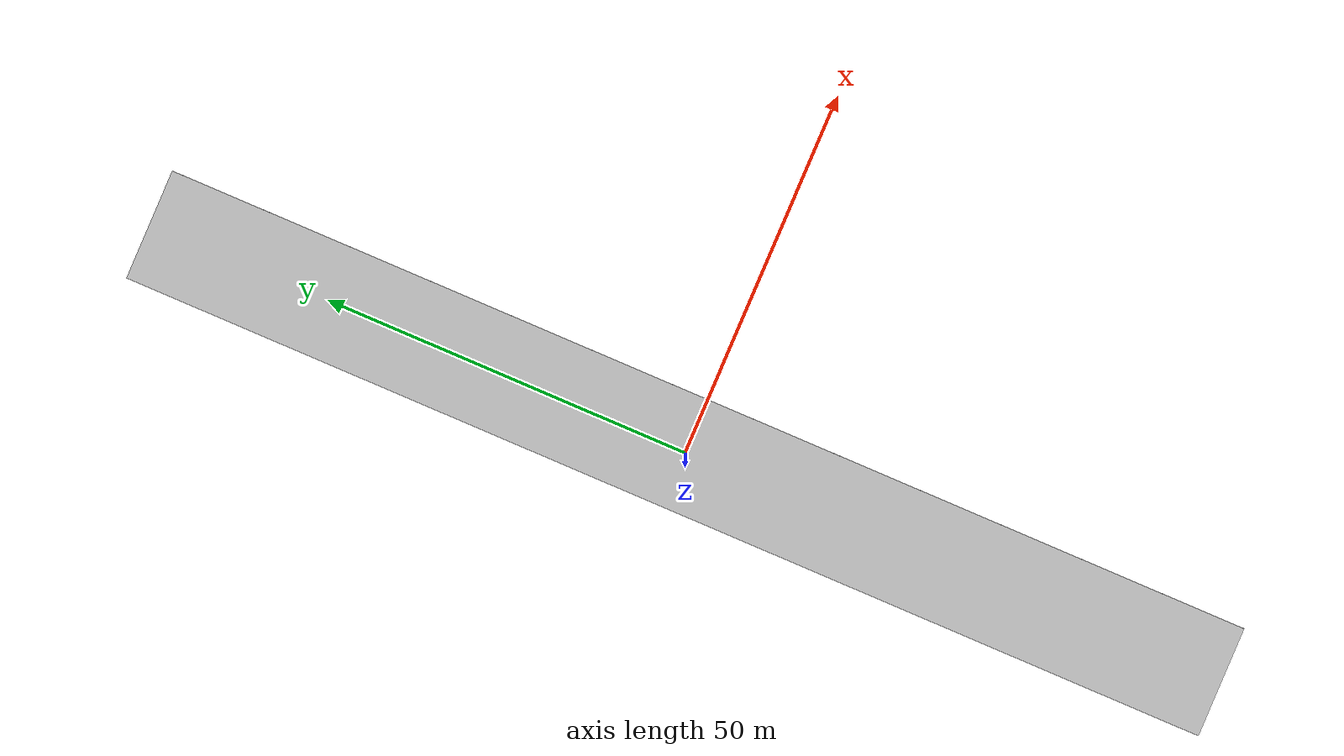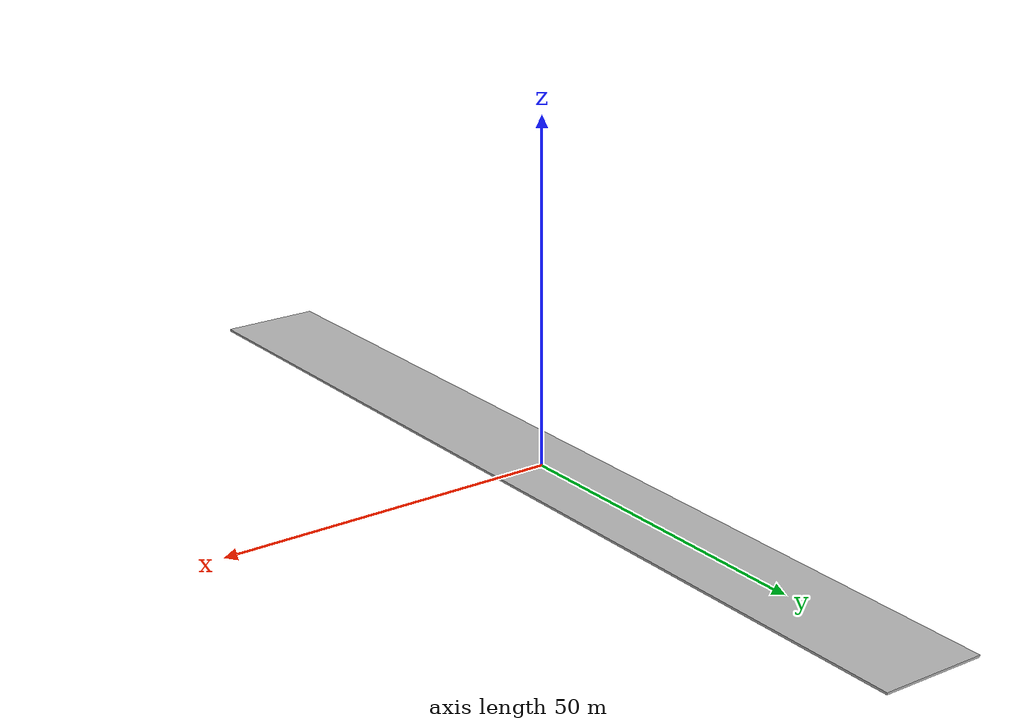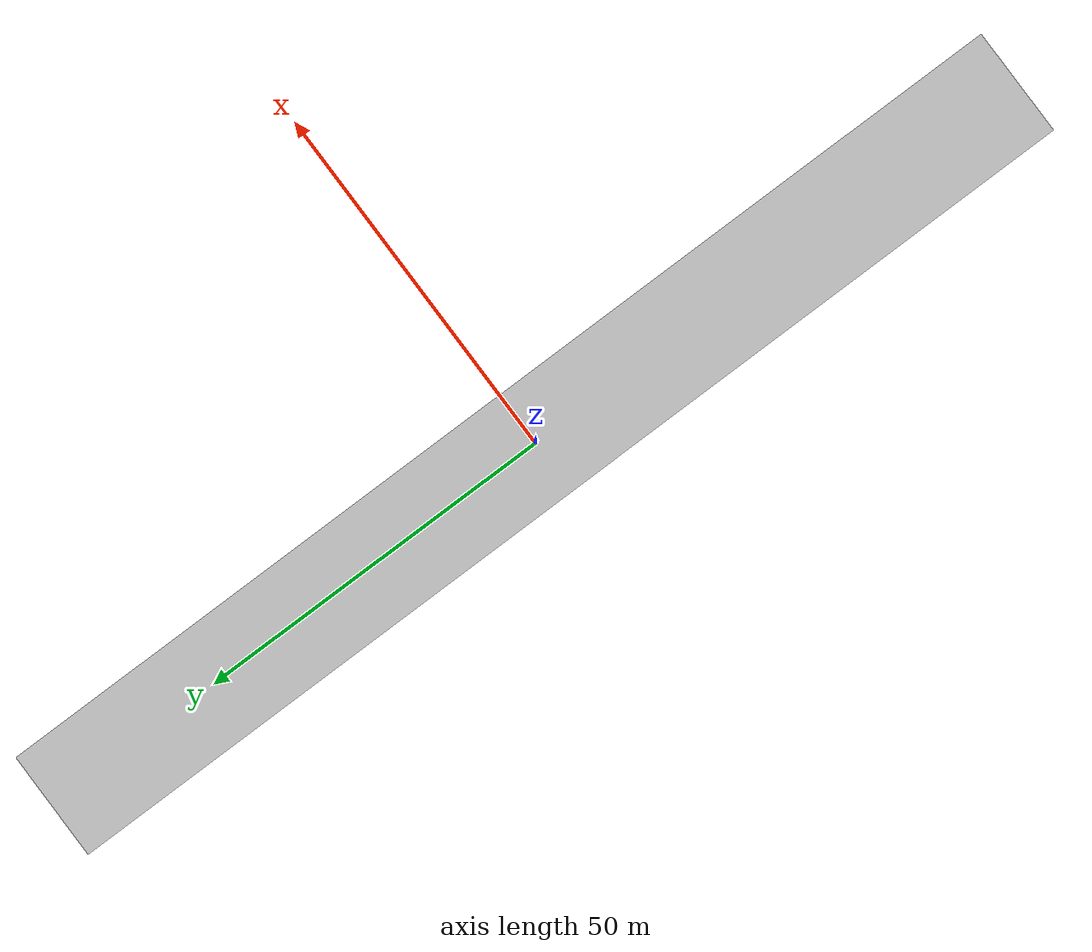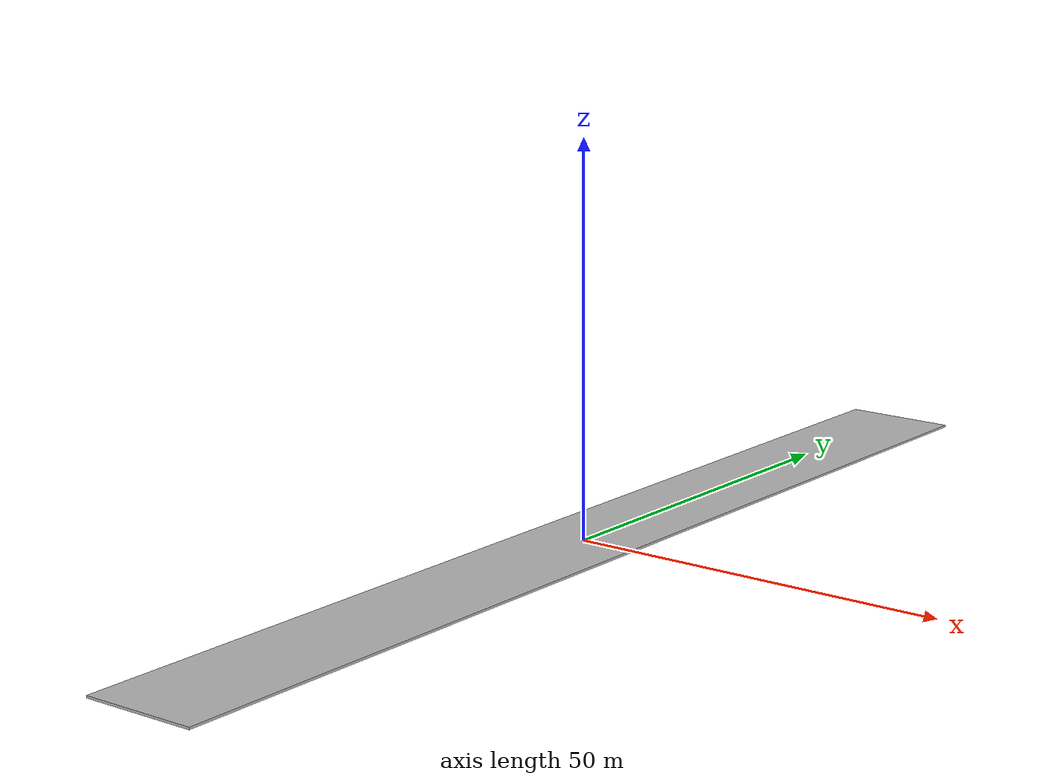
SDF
<?xml version="1.0" ?>
<sdf version="1.5">
  <model name="lane">
    <static>true</static>
    <link name="link">
      <collision name="collision">
        <geometry>
          <box>
            <size>15 150 .3</size>
          </box>
        </geometry>
      </collision>
      <visual name="visual">
        <cast_shadows>false</cast_shadows>
        <geometry>
          <box>
            <size>15 150 .3</size>
          </box>
        </geometry>
        <material>
          <script>
            <uri>model://lane/materials/scripts</uri>
            <uri>model://lane/materials/textures</uri>
            <name>vrc/lane</name>
          </script>
        </material>
      </visual>
    </link>
  </model>
</sdf>
